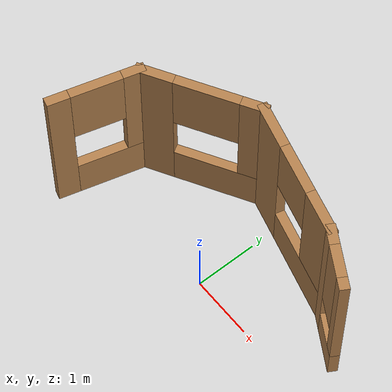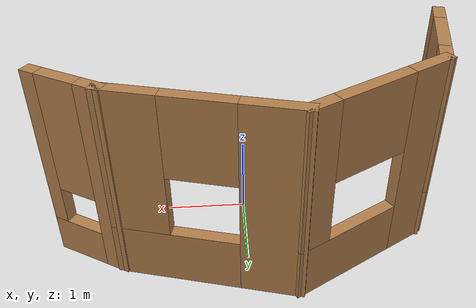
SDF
<?xml version='1.0'?>
<sdf version='1.7'>
  <model name='my'>
    <pose>-0.143178 0.4751 0 0 -0 0</pose>
    <link name='Wall_17'>
      <pose>-2.18865 -0.467798 0 0 -0 1.309</pose>
      <visual name='Wall_17_Visual_0'>
        <pose>-0.575376 0 1.25 0 -0 0</pose>
        <geometry>
          <box>
            <size>0.349249 0.15 2.5</size>
          </box>
        </geometry>
        <material>
          <script>
            <uri>file://media/materials/scripts/gazebo.material</uri>
            <name>Gazebo/Wood</name>
          </script>
          <ambient>1 1 1 1</ambient>
        </material>
        <meta>
          <layer>0</layer>
        </meta>
      </visual>
      <collision name='Wall_17_Collision_0'>
        <geometry>
          <box>
            <size>0.349249 0.15 2.5</size>
          </box>
        </geometry>
        <pose>-0.575376 0 1.25 0 -0 0</pose>
      </collision>
      <visual name='Wall_17_Visual_1'>
        <pose>0.174624 0 0.35 0 -0 0</pose>
        <geometry>
          <box>
            <size>1.15075 0.15 0.7</size>
          </box>
        </geometry>
        <material>
          <script>
            <uri>file://media/materials/scripts/gazebo.material</uri>
            <name>Gazebo/Wood</name>
          </script>
          <ambient>1 1 1 1</ambient>
        </material>
        <meta>
          <layer>0</layer>
        </meta>
      </visual>
      <collision name='Wall_17_Collision_1'>
        <geometry>
          <box>
            <size>1.15075 0.15 0.7</size>
          </box>
        </geometry>
        <pose>0.174624 0 0.35 0 -0 0</pose>
      </collision>
      <visual name='Wall_17_Visual_2'>
        <pose>0.574624 0 1.6 0 -0 0</pose>
        <geometry>
          <box>
            <size>0.350751 0.15 1.8</size>
          </box>
        </geometry>
        <material>
          <script>
            <uri>file://media/materials/scripts/gazebo.material</uri>
            <name>Gazebo/Wood</name>
          </script>
          <ambient>1 1 1 1</ambient>
        </material>
        <meta>
          <layer>0</layer>
        </meta>
      </visual>
      <collision name='Wall_17_Collision_2'>
        <geometry>
          <box>
            <size>0.350751 0.15 1.8</size>
          </box>
        </geometry>
        <pose>0.574624 0 1.6 0 -0 0</pose>
      </collision>
      <visual name='Wall_17_Visual_3'>
        <pose>-0.000751 0 2 0 -0 0</pose>
        <geometry>
          <box>
            <size>0.8 0.15 1</size>
          </box>
        </geometry>
        <material>
          <script>
            <uri>file://media/materials/scripts/gazebo.material</uri>
            <name>Gazebo/Wood</name>
          </script>
          <ambient>1 1 1 1</ambient>
        </material>
        <meta>
          <layer>0</layer>
        </meta>
      </visual>
      <collision name='Wall_17_Collision_3'>
        <geometry>
          <box>
            <size>0.8 0.15 1</size>
          </box>
        </geometry>
        <pose>-0.000751 0 2 0 -0 0</pose>
      </collision>
    </link>
    <link name='Wall_18'>
      <pose>-1.21288 0.646702 0 0 -0 0.523599</pose>
      <visual name='Wall_18_Visual_0'>
        <pose>-0.70443 0 1.25 0 -0 0</pose>
        <geometry>
          <box>
            <size>0.591139 0.15 2.5</size>
          </box>
        </geometry>
        <material>
          <script>
            <uri>file://media/materials/scripts/gazebo.material</uri>
            <name>Gazebo/Wood</name>
          </script>
          <ambient>1 1 1 1</ambient>
        </material>
        <meta>
          <layer>0</layer>
        </meta>
      </visual>
      <collision name='Wall_18_Collision_0'>
        <geometry>
          <box>
            <size>0.591139 0.15 2.5</size>
          </box>
        </geometry>
        <pose>-0.70443 0 1.25 0 -0 0</pose>
      </collision>
      <visual name='Wall_18_Visual_1'>
        <pose>0.29557 0 0.35 0 -0 0</pose>
        <geometry>
          <box>
            <size>1.40886 0.15 0.7</size>
          </box>
        </geometry>
        <material>
          <script>
            <uri>file://media/materials/scripts/gazebo.material</uri>
            <name>Gazebo/Wood</name>
          </script>
          <ambient>1 1 1 1</ambient>
        </material>
        <meta>
          <layer>0</layer>
        </meta>
      </visual>
      <collision name='Wall_18_Collision_1'>
        <geometry>
          <box>
            <size>1.40886 0.15 0.7</size>
          </box>
        </geometry>
        <pose>0.29557 0 0.35 0 -0 0</pose>
      </collision>
      <visual name='Wall_18_Visual_2'>
        <pose>0.79557 0 1.6 0 -0 0</pose>
        <geometry>
          <box>
            <size>0.408861 0.15 1.8</size>
          </box>
        </geometry>
        <material>
          <script>
            <uri>file://media/materials/scripts/gazebo.material</uri>
            <name>Gazebo/Wood</name>
          </script>
          <ambient>1 1 1 1</ambient>
        </material>
        <meta>
          <layer>0</layer>
        </meta>
      </visual>
      <collision name='Wall_18_Collision_2'>
        <geometry>
          <box>
            <size>0.408861 0.15 1.8</size>
          </box>
        </geometry>
        <pose>0.79557 0 1.6 0 -0 0</pose>
      </collision>
      <visual name='Wall_18_Visual_3'>
        <pose>0.091139 0 2 0 -0 0</pose>
        <geometry>
          <box>
            <size>1 0.15 1</size>
          </box>
        </geometry>
        <material>
          <script>
            <uri>file://media/materials/scripts/gazebo.material</uri>
            <name>Gazebo/Wood</name>
          </script>
          <ambient>1 1 1 1</ambient>
        </material>
        <meta>
          <layer>0</layer>
        </meta>
      </visual>
      <collision name='Wall_18_Collision_3'>
        <geometry>
          <box>
            <size>1 0.15 1</size>
          </box>
        </geometry>
        <pose>0.091139 0 2 0 -0 0</pose>
      </collision>
    </link>
    <link name='Wall_19'>
      <pose>0.602418 0.837442 0 0 -0 -0.261799</pose>
      <visual name='Wall_19_Visual_0'>
        <pose>-0.751028 0 1.25 0 -0 0</pose>
        <geometry>
          <box>
            <size>0.747944 0.15 2.5</size>
          </box>
        </geometry>
        <material>
          <script>
            <uri>file://media/materials/scripts/gazebo.material</uri>
            <name>Gazebo/Wood</name>
          </script>
          <ambient>1 1 1 1</ambient>
        </material>
        <meta>
          <layer>0</layer>
        </meta>
      </visual>
      <collision name='Wall_19_Collision_0'>
        <geometry>
          <box>
            <size>0.747944 0.15 2.5</size>
          </box>
        </geometry>
        <pose>-0.751028 0 1.25 0 -0 0</pose>
      </collision>
      <visual name='Wall_19_Visual_1'>
        <pose>0.373972 0 0.35 0 -0 0</pose>
        <geometry>
          <box>
            <size>1.50206 0.15 0.7</size>
          </box>
        </geometry>
        <material>
          <script>
            <uri>file://media/materials/scripts/gazebo.material</uri>
            <name>Gazebo/Wood</name>
          </script>
          <ambient>1 1 1 1</ambient>
        </material>
        <meta>
          <layer>0</layer>
        </meta>
      </visual>
      <collision name='Wall_19_Collision_1'>
        <geometry>
          <box>
            <size>1.50206 0.15 0.7</size>
          </box>
        </geometry>
        <pose>0.373972 0 0.35 0 -0 0</pose>
      </collision>
      <visual name='Wall_19_Visual_2'>
        <pose>0.773972 0 1.6 0 -0 0</pose>
        <geometry>
          <box>
            <size>0.702056 0.15 1.8</size>
          </box>
        </geometry>
        <material>
          <script>
            <uri>file://media/materials/scripts/gazebo.material</uri>
            <name>Gazebo/Wood</name>
          </script>
          <ambient>1 1 1 1</ambient>
        </material>
        <meta>
          <layer>0</layer>
        </meta>
      </visual>
      <collision name='Wall_19_Collision_2'>
        <geometry>
          <box>
            <size>0.702056 0.15 1.8</size>
          </box>
        </geometry>
        <pose>0.773972 0 1.6 0 -0 0</pose>
      </collision>
      <visual name='Wall_19_Visual_3'>
        <pose>0.022944 0 2 0 -0 0</pose>
        <geometry>
          <box>
            <size>0.8 0.15 1</size>
          </box>
        </geometry>
        <material>
          <script>
            <uri>file://media/materials/scripts/gazebo.material</uri>
            <name>Gazebo/Wood</name>
          </script>
          <ambient>1 1 1 1</ambient>
        </material>
        <meta>
          <layer>0</layer>
        </meta>
      </visual>
      <collision name='Wall_19_Collision_3'>
        <geometry>
          <box>
            <size>0.8 0.15 1</size>
          </box>
        </geometry>
        <pose>0.022944 0 2 0 -0 0</pose>
      </collision>
    </link>
    <link name='Wall_20'>
      <pose>1.9847 0.353182 0 0 -0 -0.523599</pose>
      <visual name='Wall_20_Visual_0'>
        <pose>-0.343247 0 1.25 0 -0 0</pose>
        <geometry>
          <box>
            <size>0.313506 0.15 2.5</size>
          </box>
        </geometry>
        <material>
          <script>
            <uri>file://media/materials/scripts/gazebo.material</uri>
            <name>Gazebo/Wood</name>
          </script>
          <ambient>1 1 1 1</ambient>
        </material>
        <meta>
          <layer>0</layer>
        </meta>
      </visual>
      <collision name='Wall_20_Collision_0'>
        <geometry>
          <box>
            <size>0.313506 0.15 2.5</size>
          </box>
        </geometry>
        <pose>-0.343247 0 1.25 0 -0 0</pose>
      </collision>
      <visual name='Wall_20_Visual_1'>
        <pose>0.156753 0 0.25 0 -0 0</pose>
        <geometry>
          <box>
            <size>0.686494 0.15 0.5</size>
          </box>
        </geometry>
        <material>
          <script>
            <uri>file://media/materials/scripts/gazebo.material</uri>
            <name>Gazebo/Wood</name>
          </script>
          <ambient>1 1 1 1</ambient>
        </material>
        <meta>
          <layer>0</layer>
        </meta>
      </visual>
      <collision name='Wall_20_Collision_1'>
        <geometry>
          <box>
            <size>0.686494 0.15 0.5</size>
          </box>
        </geometry>
        <pose>0.156753 0 0.25 0 -0 0</pose>
      </collision>
      <visual name='Wall_20_Visual_2'>
        <pose>0.406753 0 1.5 0 -0 0</pose>
        <geometry>
          <box>
            <size>0.186494 0.15 2</size>
          </box>
        </geometry>
        <material>
          <script>
            <uri>file://media/materials/scripts/gazebo.material</uri>
            <name>Gazebo/Wood</name>
          </script>
          <ambient>1 1 1 1</ambient>
        </material>
        <meta>
          <layer>0</layer>
        </meta>
      </visual>
      <collision name='Wall_20_Collision_2'>
        <geometry>
          <box>
            <size>0.186494 0.15 2</size>
          </box>
        </geometry>
        <pose>0.406753 0 1.5 0 -0 0</pose>
      </collision>
      <visual name='Wall_20_Visual_3'>
        <pose>0.063506 0 1.75 0 -0 0</pose>
        <geometry>
          <box>
            <size>0.5 0.15 1.5</size>
          </box>
        </geometry>
        <material>
          <script>
            <uri>file://media/materials/scripts/gazebo.material</uri>
            <name>Gazebo/Wood</name>
          </script>
          <ambient>1 1 1 1</ambient>
        </material>
        <meta>
          <layer>0</layer>
        </meta>
      </visual>
      <collision name='Wall_20_Collision_3'>
        <geometry>
          <box>
            <size>0.5 0.15 1.5</size>
          </box>
        </geometry>
        <pose>0.063506 0 1.75 0 -0 0</pose>
      </collision>
    </link>
    <static>1</static>
  </model>
</sdf>
